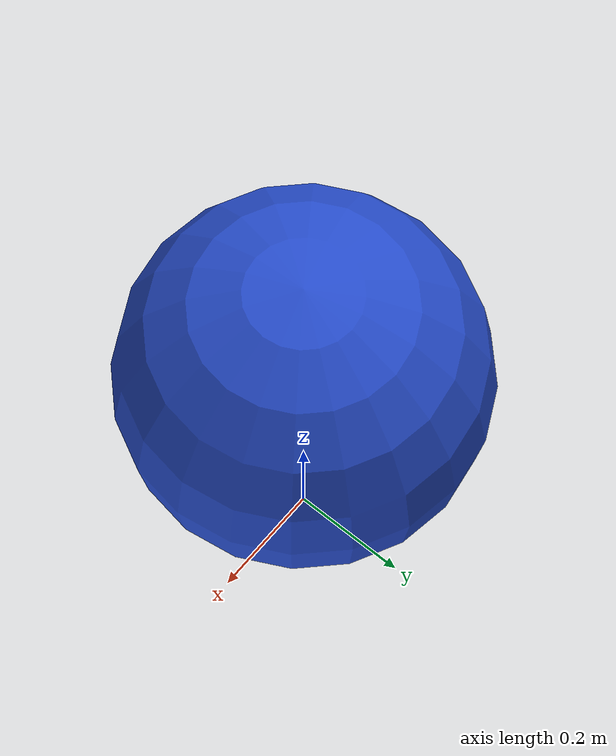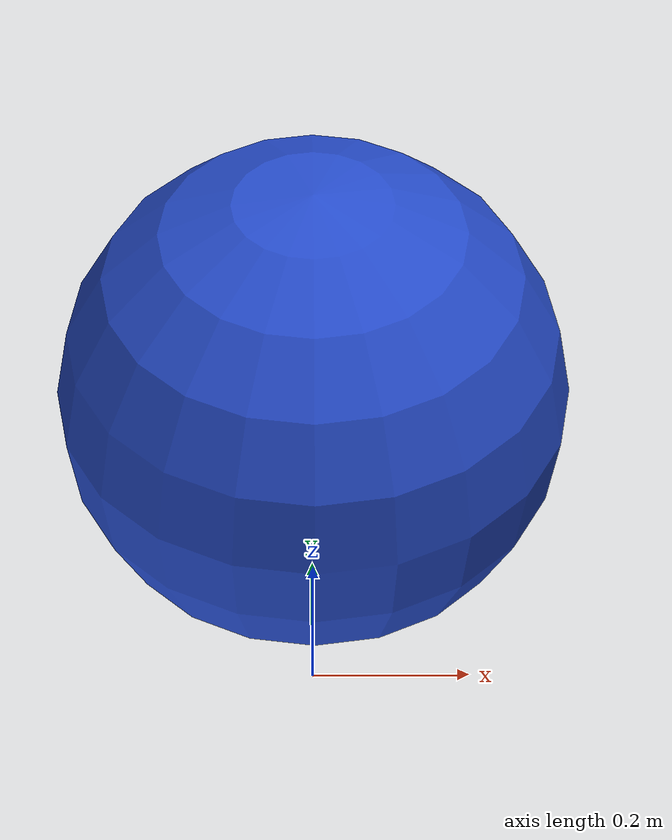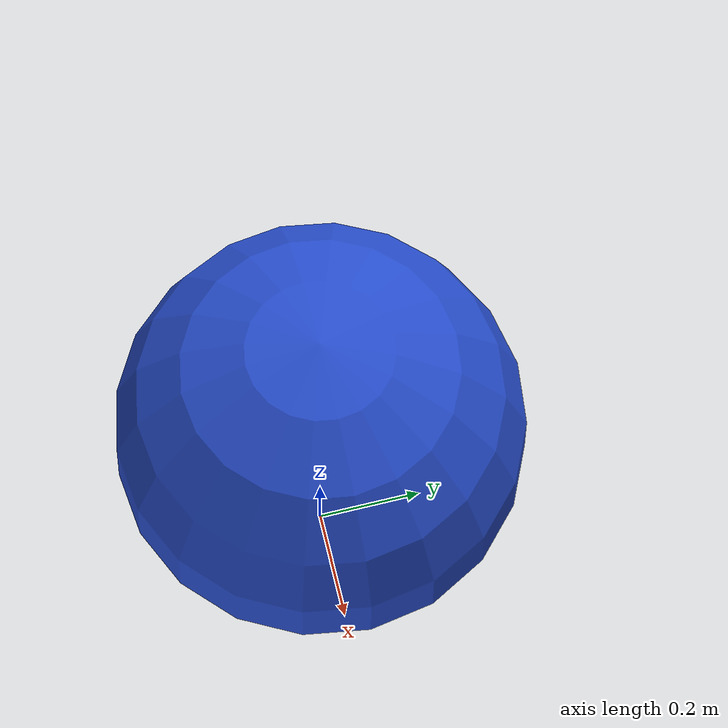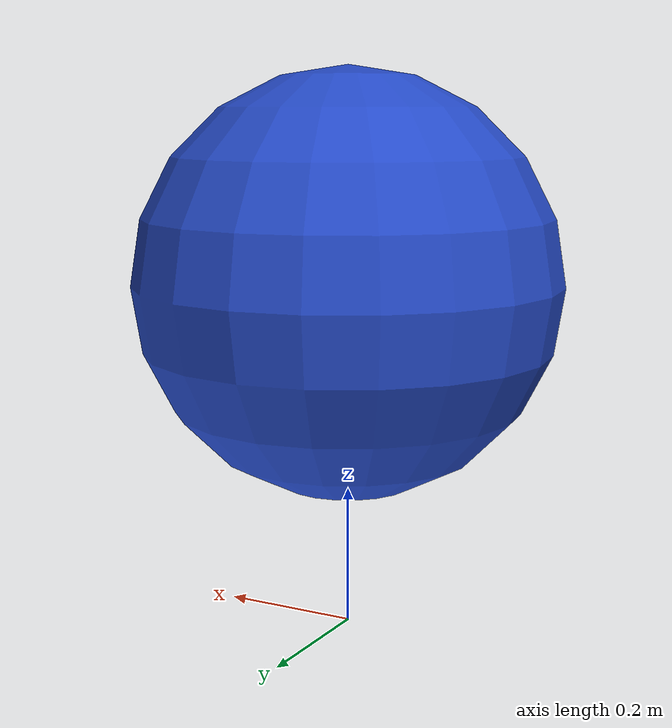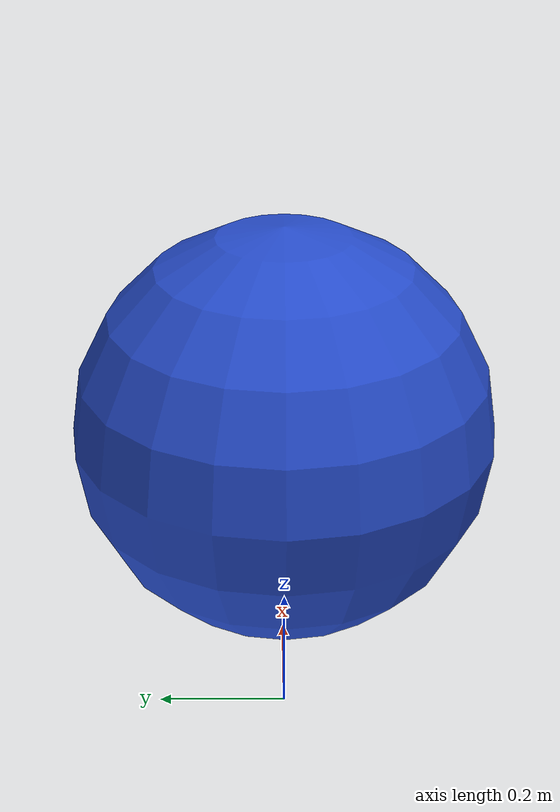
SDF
<?xml version='1.0'?>
<sdf version="1.4">
  <model name="frc_2014_ball_blue">
    <pose>0 0 0.5 0 0 0</pose>
    <link name="ball">
      <inertial>
        <!-- rough estimate: 1.5 kg spherical shell, radius 30 cm -->
        <mass>1.3671</mass>
        <inertia>
          <!-- xx = yy = zz = 2/5 * mass * radius^2 -->
          <ixx>0.00508</ixx>
          <ixy>0.00</ixy>
          <ixz>0.00</ixz>
          <iyy>0.00508</iyy>
          <iyz>0.00</iyz>
          <izz>0.00508</izz>
        </inertia>
      </inertial>
      <collision name="collision">
        <geometry>
          <sphere>
            <radius>0.3048</radius>
          </sphere>
        </geometry>
        <surface>
          <bounce>
            <restitution_coefficient>0.8</restitution_coefficient>
            <threshold>0</threshold>
          </bounce>
          <contact>
            <ode>
              <max_vel>1000</max_vel>
              <min_depth>0</min_depth>
            </ode>
          </contact>
        </surface>
      </collision>
      <visual name="visual">
        <geometry>
          <sphere>
            <radius>0.3048</radius>
          </sphere>
        </geometry>
        <material>
          <script>
            <uri>file://media/materials/scripts/gazebo.material</uri>
            <name>Gazebo/Blue</name>
          </script>
        </material>
      </visual>
      <!-- this is a minimalist way to model the ball's rolling friction -->
      <velocity_decay>
        <linear>0.0</linear>
        <angular>0.01</angular>
      </velocity_decay>
    </link>
  </model>
</sdf>
